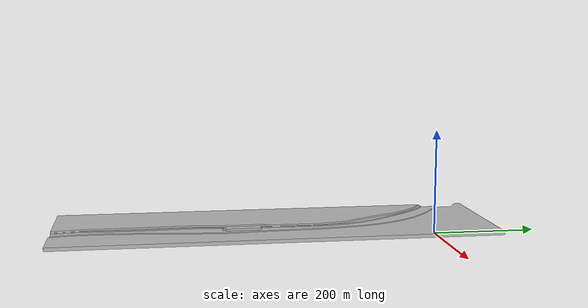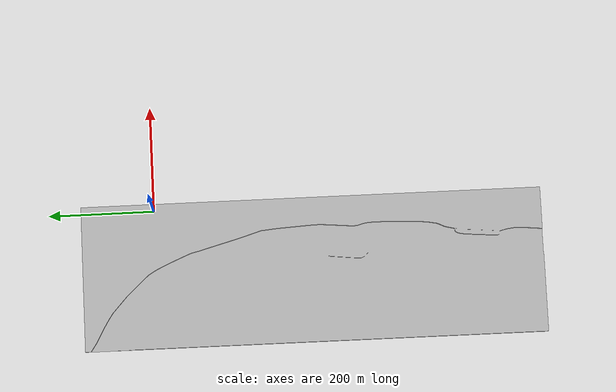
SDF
<?xml version="1.0" encoding="UTF-8"?>
<sdf version="1.6">
  <model name="palheirosV1">
    <pose>0 0 0 3.14 0 0</pose>
    <static>true</static>
    <link name="link">
      <visual name="visual_terrain">
        <cast_shadows>false</cast_shadows>
        <geometry>
          <mesh>
            <uri>model://palheirosV1/meshes/heightmap.stl</uri>
          </mesh>
        </geometry>
        <material>
          <script>
            <uri>model://mud_box/materials/scripts</uri>
            <uri>model://mud_box/materials/textures</uri>
            <name>vrc/mud</name>
          </script>
        </material>
      </visual>

      <collision name="collision">
        <geometry>
          <mesh>
            <uri>model://palheirosV1/meshes/heightmap.stl</uri>
          </mesh>
        </geometry>
      </collision>
    </link>
  </model>
</sdf>
